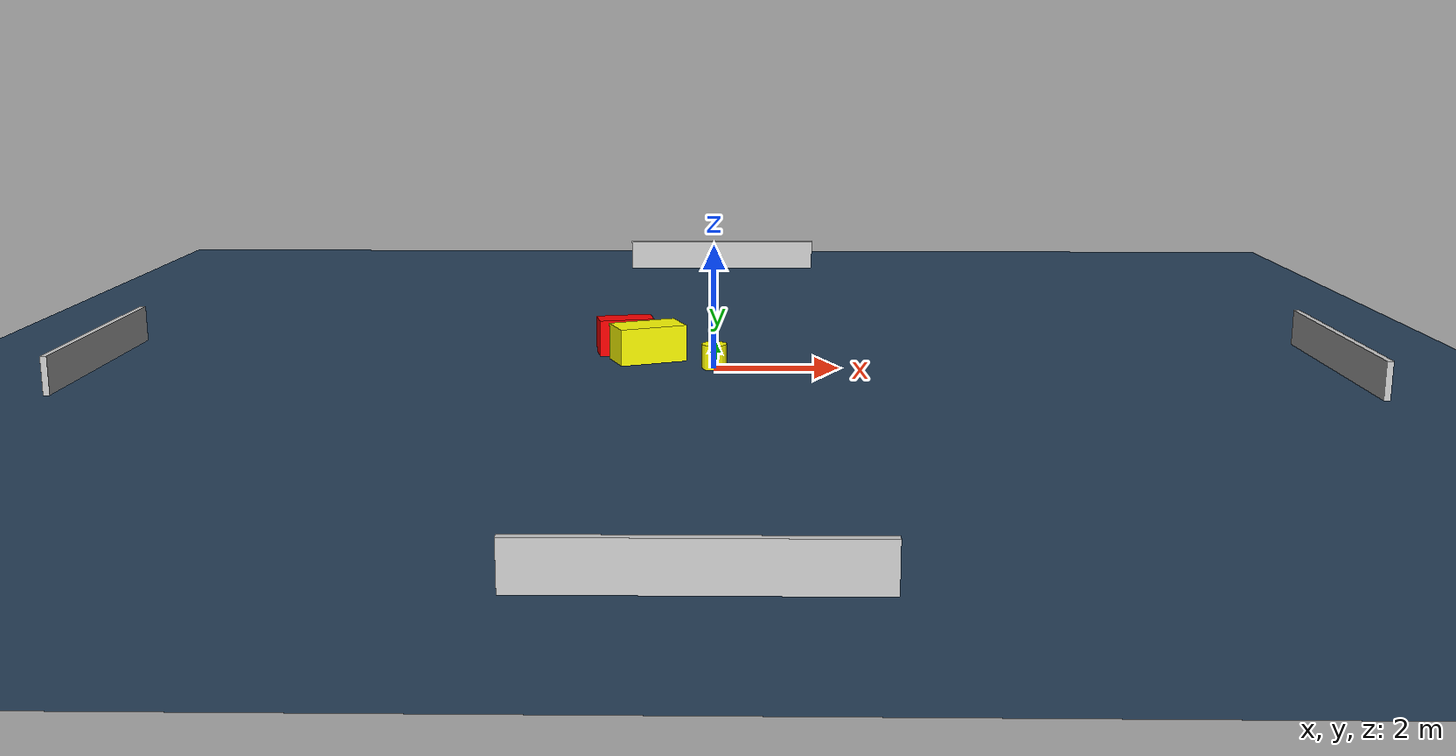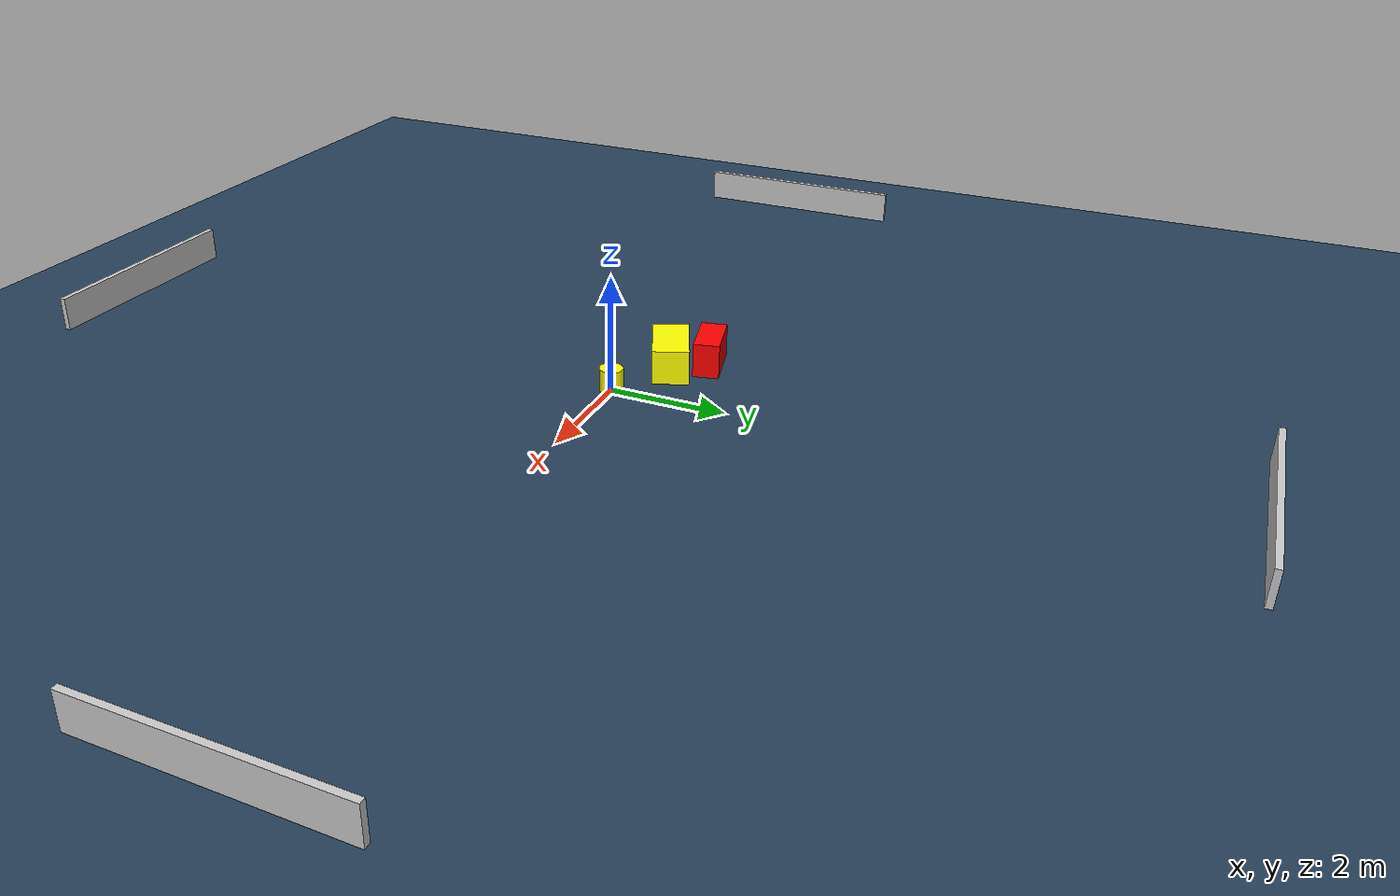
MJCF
<?xml version="1.0" ?>
<mujoco model="generated_environment">
  <option timestep="0.01" integrator="RK4" cone="elliptic"/>
  <default>
    <geom density="1"/>
  </default>
  <asset>
    <texture builtin="gradient" height="3072" name="skybox" rgb1="0.3 0.5 0.7" rgb2="0 0 0" type="skybox" width="512"/>
    <texture builtin="checker" height="300" name="groundplane" rgb1="0.2 0.3 0.4" rgb2="0.1 0.2 0.3" type="2d" width="300"/>
    <material name="groundplane" reflectance="0.2" texrepeat="5 5" texture="groundplane"/>
  </asset>
  <worldbody>
    <light dir="0 0 -1" directional="true" pos="0 0 1.5"/>
    <geom condim="3" friction="0.5 0.005 0.001" material="groundplane" name="floor" pos="0 0 0" size="0 0 0.05" type="plane"/>
    <body name="walls">
      <geom name="wall_1" condim="4" pos="-10.0 0.0 0.3" rgba="0.800000011920929 0.800000011920929 0.800000011920929 1.0" size="0.05 2.0 0.3" type="box"/>
      <geom name="wall_2" condim="4" pos="10.0 0.0 0.3" rgba="0.800000011920929 0.800000011920929 0.800000011920929 1.0" size="0.05 2.0 0.3" type="box"/>
      <geom name="wall_3" condim="4" pos="0.0 -10.0 0.3" rgba="0.800000011920929 0.800000011920929 0.800000011920929 1.0" size="2.0 0.05 0.3" type="box"/>
      <geom name="wall_4" condim="4" pos="0.0 10.0 0.3" rgba="0.800000011920929 0.800000011920929 0.800000011920929 1.0" size="2.0 0.05 0.3" type="box"/>
    </body>
    <body name="robot">
      <joint name="joint_x" type="slide" pos="0 0 0" axis="1 0 0"/>
      <joint name="joint_y" type="slide" pos="0 0 0" axis="0 1 0"/>
      <geom name="robot" type="cylinder" pos="0.0 0.0 0.2" size="0.2 0.2 0.0" mass="5.0" friction="1.0 0.005 0.0001" condim="4" rgba="1.0 1.0 0.0 1.0"/>
    </body>
    <body name="obstacle_1_movable">
      <geom name="obstacle_1_movable" condim="4" pos="-1.106762181108486 0.5941957442735174 0.3" euler="0 0 112.34473406863937" friction="0.0 0.005 0.001" rgba="1.0 1.0 0.0 1.0" size="0.3112884205235266 0.5631603014383578 0.3" type="box" mass="0.1"/>
      <joint type="free"/>
    </body>
    <body name="obstacle_2_static">
      <geom name="obstacle_2_static" condim="4" pos="-1.5157683070558 1.152577245684035 0.3" euler="0 0 282.40468572017454" friction="0.0 0.005 0.001" rgba="1.0 0.0 0.0 1.0" size="0.22339955607243767 0.4575045674947265 0.3" type="box"/>
    </body>
  </worldbody>
  <actuator>
    <motor name="actuator_x" joint="joint_x" gear="1" ctrlrange="-1 1"/>
    <motor name="actuator_y" joint="joint_y" gear="1" ctrlrange="-1 1"/>
  </actuator>
</mujoco>
